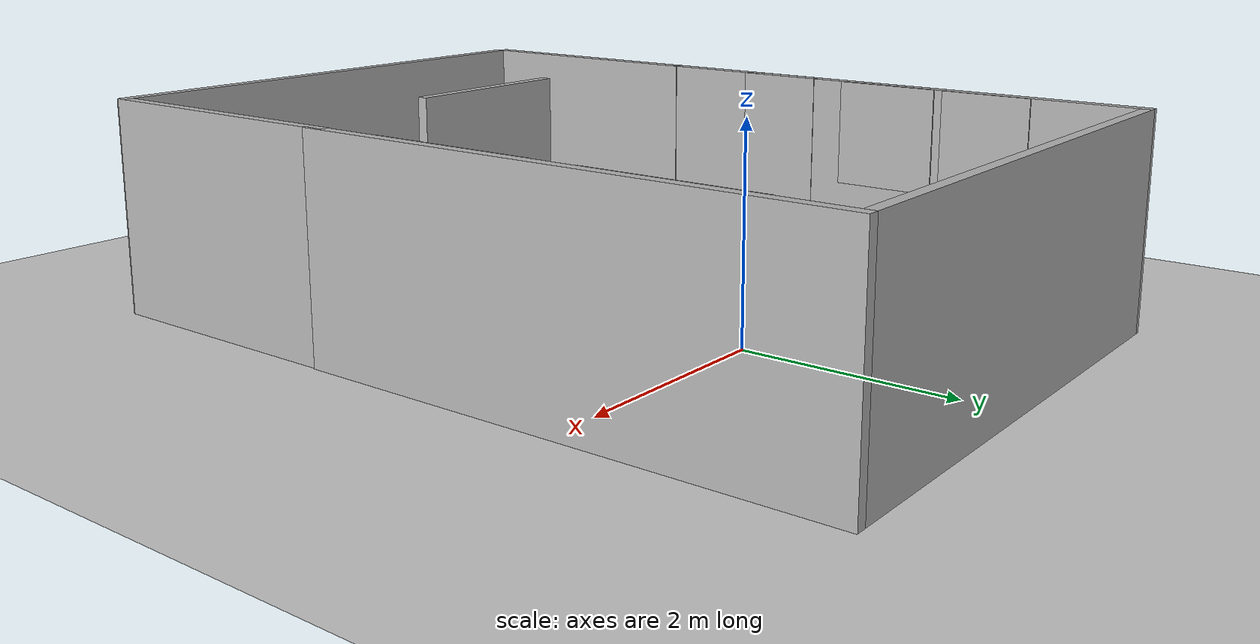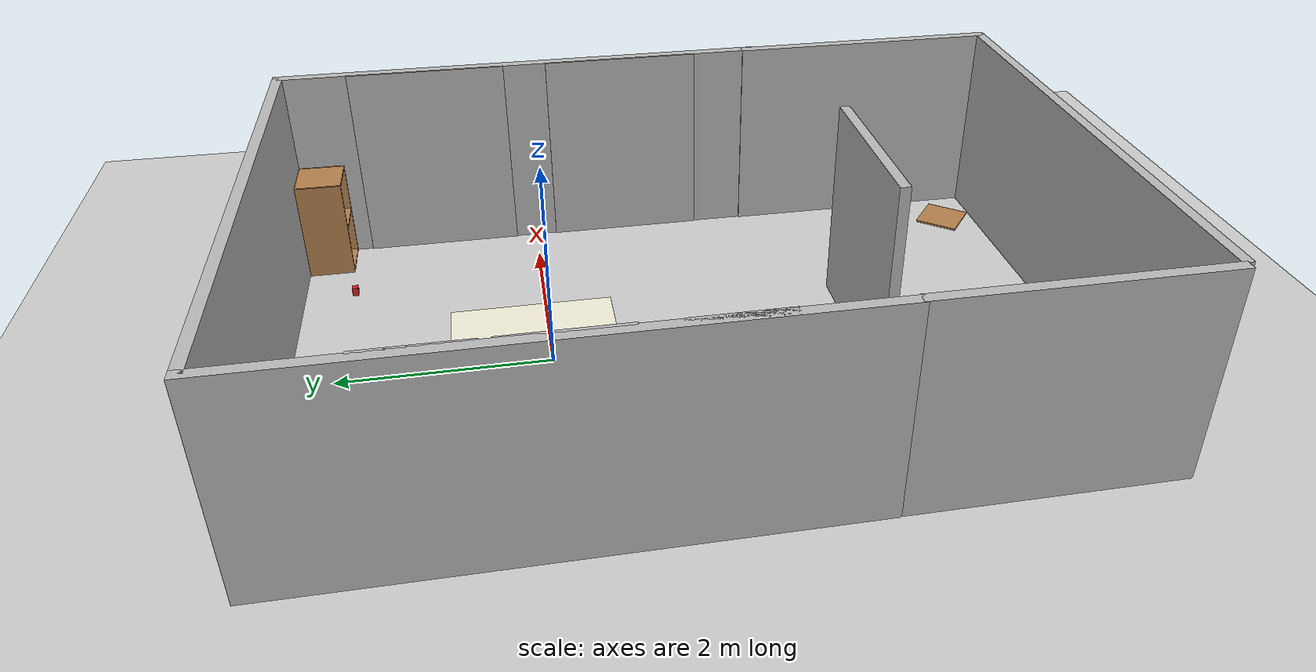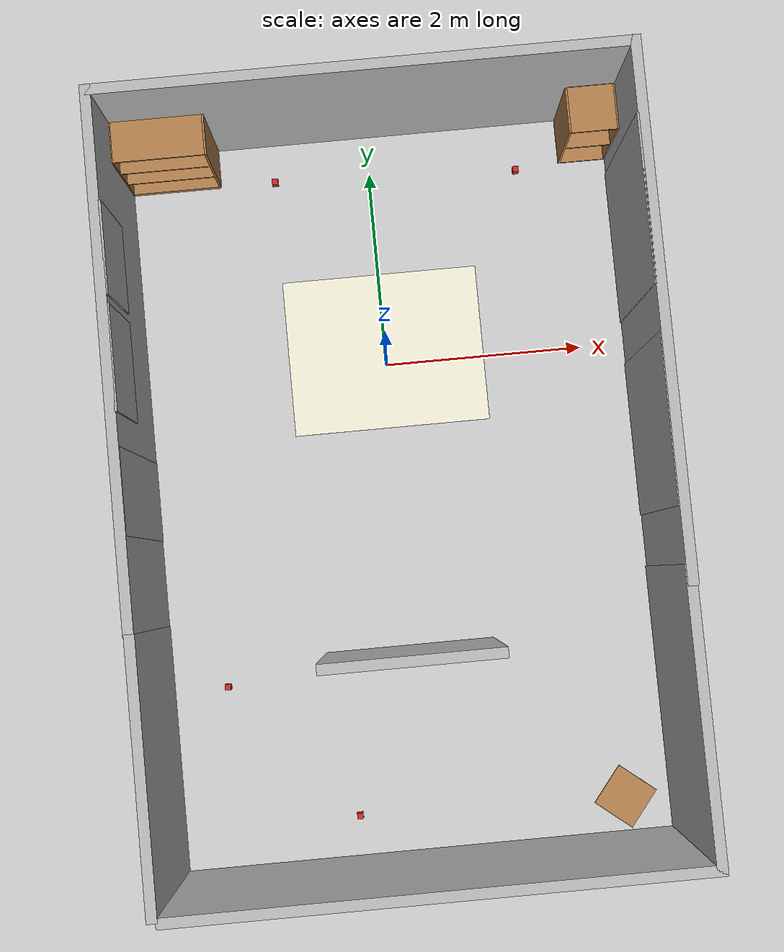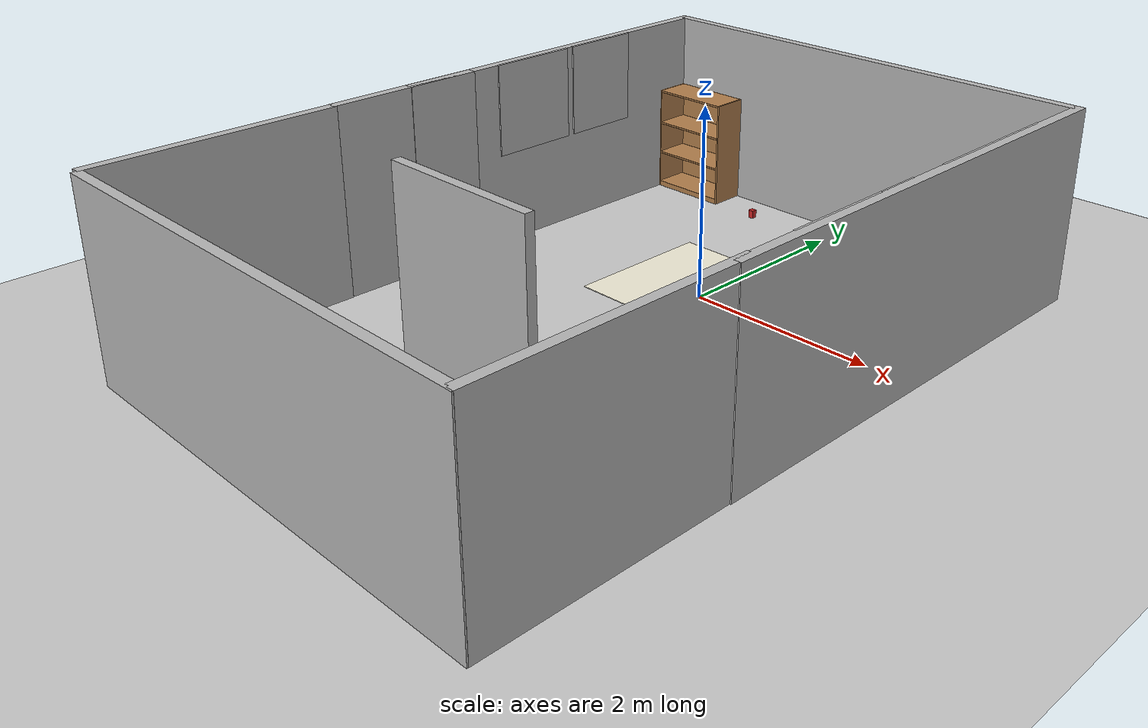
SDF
<sdf version="1.7">
 <world name="default">
  <light name="sun" type="directional">
   <pose>0 0 10 0 -0 0</pose>
   <diffuse>0.8 0.8 0.8 1</diffuse>
   <specular>0.2 0.2 0.2 1</specular>
   <attenuation>
    <range>1000</range>
    <constant>0.9</constant>
    <linear>0.01</linear>
    <quadratic>0.001</quadratic>
   </attenuation>
   <direction>-0.5 0.1 -0.9</direction>
   <spot><inner_angle>0</inner_angle><outer_angle>0</outer_angle><falloff>0</falloff></spot>
  </light>
  <model name="ground_plane">
   <static>1</static>
   <link name="link">
    <collision name="collision">
     <geometry><plane><normal>0 0 1</normal><size>100 100</size></plane></geometry>
     <surface>
      <contact><collide_bitmask>65535</collide_bitmask></contact>
      <friction><ode><mu>100</mu><mu2>50</mu2></ode></friction>
     </surface>
    </collision>
    <visual name="visual">
     <cast_shadows>0</cast_shadows>
     <geometry><plane><normal>0 0 1</normal><size>1 1</size></plane></geometry>
     <material>
      <script><uri>file://media/materials/scripts/gazebo.material</uri><name>Gazebo/Grey</name></script>
     </material>
    </visual>
   </link>
  </model>
  <gravity>0 0 -9.8</gravity>
  <magnetic_field>6e-06 2.3e-05 -4.2e-05</magnetic_field>
  <atmosphere type="adiabatic"/>
  <physics type="ode">
   <max_step_size>0.001</max_step_size>
   <real_time_factor>1</real_time_factor>
   <real_time_update_rate>1000</real_time_update_rate>
  </physics>
  <scene><ambient>0.4 0.4 0.4 1</ambient><background>0.7 0.7 0.7 1</background><shadows>1</shadows></scene>
  <audio><device>default</device></audio>
  <spherical_coordinates>
   <surface_model>EARTH_WGS84</surface_model>
   <latitude_deg>0</latitude_deg>
   <longitude_deg>0</longitude_deg>
   <elevation>0</elevation>
   <heading_deg>0</heading_deg>
  </spherical_coordinates>
  <model name="Bookshelf">
   <static>1</static>
   <link name="link">
    <inertial><mass>1</mass></inertial>
    <collision name="back">
     <pose>0 0.005 0.6 0 -0 0</pose>
     <geometry><box><size>0.9 0.01 1.2</size></box></geometry>
    </collision>
    <visual name="visual1">
     <pose>0 0.005 0.6 0 -0 0</pose>
     <geometry><box><size>0.9 0.01 1.2</size></box></geometry>
     <material>
      <diffuse>1 1 1 1</diffuse>
      <script><uri>file://media/materials/scripts/gazebo.material</uri><name>Gazebo/Wood</name></script>
      <pbr>
       <metal>
        <albedo_map>https://fuel.ignitionrobotics.org/1.0/openrobotics/models/bookshelf/3/files/bookshelf_diffuse.jpg</albedo_map>
       </metal>
      </pbr>
     </material>
    </visual>
    <collision name="left_side">
     <pose>0.45 -0.195 0.6 0 -0 0</pose>
     <geometry><box><size>0.02 0.4 1.2</size></box></geometry>
    </collision>
    <visual name="visual2">
     <pose>0.45 -0.195 0.6 0 -0 0</pose>
     <geometry><box><size>0.02 0.4 1.2</size></box></geometry>
     <material>
      <diffuse>1 1 1 1</diffuse>
      <script><uri>file://media/materials/scripts/gazebo.material</uri><name>Gazebo/Wood</name></script>
      <pbr>
       <metal>
        <albedo_map>https://fuel.ignitionrobotics.org/1.0/openrobotics/models/bookshelf/3/files/bookshelf_diffuse.jpg</albedo_map>
       </metal>
      </pbr>
     </material>
    </visual>
    <collision name="right_side">
     <pose>-0.45 -0.195 0.6 0 -0 0</pose>
     <geometry><box><size>0.02 0.4 1.2</size></box></geometry>
    </collision>
    <visual name="visual3">
     <pose>-0.45 -0.195 0.6 0 -0 0</pose>
     <geometry><box><size>0.02 0.4 1.2</size></box></geometry>
     <material>
      <diffuse>1 1 1 1</diffuse>
      <script><uri>file://media/materials/scripts/gazebo.material</uri><name>Gazebo/Wood</name></script>
      <pbr>
       <metal>
        <albedo_map>https://fuel.ignitionrobotics.org/1.0/openrobotics/models/bookshelf/3/files/bookshelf_diffuse.jpg</albedo_map>
       </metal>
      </pbr>
     </material>
    </visual>
    <collision name="bottom">
     <pose>0 -0.195 0.03 0 -0 0</pose>
     <geometry><box><size>0.88 0.4 0.06</size></box></geometry>
    </collision>
    <visual name="visual4">
     <pose>0 -0.195 0.03 0 -0 0</pose>
     <geometry><box><size>0.88 0.4 0.06</size></box></geometry>
     <material>
      <diffuse>1 1 1 1</diffuse>
      <script><uri>file://media/materials/scripts/gazebo.material</uri><name>Gazebo/Wood</name></script>
      <pbr>
       <metal>
        <albedo_map>https://fuel.ignitionrobotics.org/1.0/openrobotics/models/bookshelf/3/files/bookshelf_diffuse.jpg</albedo_map>
       </metal>
      </pbr>
     </material>
    </visual>
    <collision name="top">
     <pose>0 -0.195 1.19 0 -0 0</pose>
     <geometry><box><size>0.88 0.4 0.02</size></box></geometry>
    </collision>
    <visual name="visual5">
     <pose>0 -0.195 1.19 0 -0 0</pose>
     <geometry><box><size>0.88 0.4 0.02</size></box></geometry>
     <material>
      <diffuse>1 1 1 1</diffuse>
      <script><uri>file://media/materials/scripts/gazebo.material</uri><name>Gazebo/Wood</name></script>
      <pbr>
       <metal>
        <albedo_map>https://fuel.ignitionrobotics.org/1.0/openrobotics/models/bookshelf/3/files/bookshelf_diffuse.jpg</albedo_map>
       </metal>
      </pbr>
     </material>
    </visual>
    <collision name="low_shelf">
     <pose>0 -0.195 0.43 0 -0 0</pose>
     <geometry><box><size>0.88 0.4 0.02</size></box></geometry>
    </collision>
    <visual name="visual6">
     <pose>0 -0.195 0.43 0 -0 0</pose>
     <geometry><box><size>0.88 0.4 0.02</size></box></geometry>
     <material>
      <diffuse>1 1 1 1</diffuse>
      <script><uri>file://media/materials/scripts/gazebo.material</uri><name>Gazebo/Wood</name></script>
      <pbr>
       <metal>
        <albedo_map>https://fuel.ignitionrobotics.org/1.0/openrobotics/models/bookshelf/3/files/bookshelf_diffuse.jpg</albedo_map>
       </metal>
      </pbr>
     </material>
    </visual>
    <collision name="high_shelf">
     <pose>0 -0.195 0.8 0 -0 0</pose>
     <geometry><box><size>0.88 0.4 0.02</size></box></geometry>
    </collision>
    <visual name="visual7">
     <pose>0 -0.195 0.8 0 -0 0</pose>
     <geometry><box><size>0.88 0.4 0.02</size></box></geometry>
     <material>
      <diffuse>1 1 1 1</diffuse>
      <script><uri>file://media/materials/scripts/gazebo.material</uri><name>Gazebo/Wood</name></script>
      <pbr>
       <metal>
        <albedo_map>https://fuel.ignitionrobotics.org/1.0/openrobotics/models/bookshelf/3/files/bookshelf_diffuse.jpg</albedo_map>
       </metal>
      </pbr>
     </material>
    </visual>
   </link>
   <pose>-2 2.4 0 0 -0 0</pose>
  </model>
  <model name="cabinet">
   <static>1</static>
   <link name="cabinet_bottom_plate">
    <inertial>
     <pose>0 0 -1 0 -0 0</pose>
     <inertia><ixx>2.05</ixx><ixy>0</ixy><ixz>0</ixz><iyy>2.05</iyy><iyz>0</iyz><izz>2.05</izz></inertia>
     <mass>25</mass>
    </inertial>
    <collision name="cabinet_bottom_plate_geom">
     <pose>0 0 0.01 0 -0 0</pose>
     <geometry><box><size>0.45 0.45 0.02</size></box></geometry>
    </collision>
    <visual name="cabinet_bottom_plate_geom_visual">
     <pose>0 0 0.01 0 -0 0</pose>
     <geometry><box><size>0.45 0.45 0.02</size></box></geometry>
     <material>
      <script><uri>file://media/materials/scripts/gazebo.material</uri><name>Gazebo/Wood</name></script>
     </material>
    </visual>
    <collision name="cabinet_bottom_plate_geom_cabinet_back_plate">
     <pose>0.235 0 0.51 0 -0 0</pose>
     <geometry><box><size>0.02 0.45 1.02</size></box></geometry>
    </collision>
    <visual name="cabinet_bottom_plate_geom_cabinet_back_plate_visual">
     <pose>0.235 0 0.51 0 -0 0</pose>
     <geometry><box><size>0.02 0.45 1.02</size></box></geometry>
     <material>
      <script><uri>file://media/materials/scripts/gazebo.material</uri><name>Gazebo/Wood</name></script>
     </material>
    </visual>
    <collision name="cabinet_bottom_plate_geom_cabinet_left_plate">
     <pose>0 0.235 0.51 0 -0 0</pose>
     <geometry><box><size>0.45 0.02 1.02</size></box></geometry>
    </collision>
    <visual name="cabinet_bottom_plate_geom_cabinet_left_plate_visual">
     <pose>0 0.235 0.51 0 -0 0</pose>
     <geometry><box><size>0.45 0.02 1.02</size></box></geometry>
     <material>
      <script><uri>file://media/materials/scripts/gazebo.material</uri><name>Gazebo/Wood</name></script>
     </material>
    </visual>
    <collision name="cabinet_bottom_plate_geom_cabinet_middle_plate">
     <pose>0 0 0.51 0 -0 0</pose>
     <geometry><box><size>0.45 0.45 0.02</size></box></geometry>
    </collision>
    <visual name="cabinet_bottom_plate_geom_cabinet_middle_plate_visual">
     <pose>0 0 0.51 0 -0 0</pose>
     <geometry><box><size>0.45 0.45 0.02</size></box></geometry>
     <material>
      <script><uri>file://media/materials/scripts/gazebo.material</uri><name>Gazebo/Wood</name></script>
     </material>
    </visual>
    <collision name="cabinet_bottom_plate_geom_cabinet_right_plate">
     <pose>0 -0.235 0.51 0 -0 0</pose>
     <geometry><box><size>0.45 0.02 1.02</size></box></geometry>
    </collision>
    <visual name="cabinet_bottom_plate_geom_cabinet_right_plate_visual">
     <pose>0 -0.235 0.51 0 -0 0</pose>
     <geometry><box><size>0.45 0.02 1.02</size></box></geometry>
     <material>
      <script><uri>file://media/materials/scripts/gazebo.material</uri><name>Gazebo/Wood</name></script>
     </material>
    </visual>
    <collision name="cabinet_bottom_plate_geom_cabinet_top_plate">
     <pose>0 0 1.01 0 -0 0</pose>
     <geometry><box><size>0.45 0.45 0.02</size></box></geometry>
    </collision>
    <visual name="cabinet_bottom_plate_geom_cabinet_top_plate_visual">
     <pose>0 0 1.01 0 -0 0</pose>
     <geometry><box><size>0.45 0.45 0.02</size></box></geometry>
     <material>
      <script><uri>file://media/materials/scripts/gazebo.material</uri><name>Gazebo/Wood</name></script>
     </material>
    </visual>
   </link>
   <pose>2.21 2.17 0 0 -0 1.5707</pose>
  </model>
  <model name="makerspet_poster">
   <link name="link">
    <visual name="visual">
     <geometry><box><size>0.03 0.85714 1</size></box></geometry>
     <material>
      <script>
       <uri>https://fuel.ignitionrobotics.org/1.0/makerspet/models/makerspet_poster/1/files/material/script</uri>
       <uri>https://fuel.ignitionrobotics.org/1.0/makerspet/models/makerspet_poster/1/files/material/textures</uri>
       <name>Custom/makerspet</name>
      </script>
     </material>
    </visual>
   </link>
   <static>1</static>
   <pose>-2.45 1 1.5 0 -0 0</pose>
  </model>
  <model name="kaiaai_poster">
   <link name="link">
    <visual name="visual">
     <geometry><box><size>0.03 0.9782 1</size></box></geometry>
     <material>
      <script>
       <uri>https://fuel.ignitionrobotics.org/1.0/makerspet/models/kaiaai_poster/1/files/material/script</uri>
       <uri>https://fuel.ignitionrobotics.org/1.0/makerspet/models/kaiaai_poster/1/files/material/textures</uri>
       <name>Custom/kaiaai</name>
      </script>
     </material>
    </visual>
   </link>
   <static>1</static>
   <pose>-2.45 0 1.5 0 -0 0</pose>
  </model>
  <model name="door_08x2m_0">
   <link name="link">
    <visual name="visual">
     <geometry><box><size>0.1 0.8 2</size></box></geometry>
     <material>
      <script>
       <uri>https://fuel.ignitionrobotics.org/1.0/makerspet/models/door_08x2m/1/files/material/script</uri>
       <uri>https://fuel.ignitionrobotics.org/1.0/makerspet/models/door_08x2m/1/files/material/textures</uri>
       <name>Custom/door_08x2m</name>
      </script>
     </material>
    </visual>
   </link>
   <static>1</static>
   <pose>-2.495 -1.2 1 0 -0 0</pose>
  </model>
  <model name="room_wall_2x5">
   <link name="link">
    <visual name="visual">
     <geometry><box><size>0.1 5 2</size></box></geometry>
     <material>
      <script>
       <uri>https://fuel.ignitionrobotics.org/1.0/makerspet/models/room_wall_2x5m/1/files/material/script</uri>
       <uri>https://fuel.ignitionrobotics.org/1.0/makerspet/models/room_wall_2x5m/1/files/material/textures</uri>
       <name>Custom/room_wall_2x5</name>
      </script>
     </material>
    </visual>
    <collision name="collision"><geometry><box><size>0.1 5 2</size></box></geometry></collision>
   </link>
   <static>1</static>
   <pose>-2.5 0 1 0 -0 0</pose>
  </model>
  <model name="room_wall_2x5_0">
   <link name="link">
    <visual name="visual">
     <geometry><box><size>0.1 5 2</size></box></geometry>
     <material>
      <script>
       <uri>https://fuel.ignitionrobotics.org/1.0/makerspet/models/room_wall_2x5m/1/files/material/script</uri>
       <uri>https://fuel.ignitionrobotics.org/1.0/makerspet/models/room_wall_2x5m/1/files/material/textures</uri>
       <name>Custom/room_wall_2x5</name>
      </script>
     </material>
    </visual>
    <collision name="collision"><geometry><box><size>0.1 5 2</size></box></geometry></collision>
   </link>
   <static>1</static>
   <pose>2.5 0 1 0 -0 0</pose>
  </model>
  <model name="room_wall_2x5_1">
   <static>1</static>
   <pose>-0.03 -2.93 1 0 -0 1.5707</pose>
   <link name="link">
    <visual name="visual">
     <geometry><box><size>0.1 1.7 2</size></box></geometry>
     <material>
      <script>
       <uri>https://fuel.ignitionrobotics.org/1.0/makerspet/models/room_wall_2x5m/1/files/material/script</uri>
       <uri>https://fuel.ignitionrobotics.org/1.0/makerspet/models/room_wall_2x5m/1/files/material/textures</uri>
       <name>Custom/room_wall_2x5</name>
      </script>
     </material>
    </visual>
    <collision name="collision"><geometry><box><size>0.1 1.7 2</size></box></geometry></collision>
   </link>
  </model>
  <model name="room_wall_2x5_2">
   <link name="link">
    <visual name="visual">
     <geometry><box><size>0.1 5 2</size></box></geometry>
     <material>
      <script>
       <uri>https://fuel.ignitionrobotics.org/1.0/makerspet/models/room_wall_2x5m/1/files/material/script</uri>
       <uri>https://fuel.ignitionrobotics.org/1.0/makerspet/models/room_wall_2x5m/1/files/material/textures</uri>
       <name>Custom/room_wall_2x5</name>
      </script>
     </material>
    </visual>
    <collision name="collision"><geometry><box><size>0.1 5 2</size></box></geometry></collision>
   </link>
   <static>1</static>
   <pose>0 2.45 1 0 -0 1.5707</pose>
  </model>
  <model name="rug_ivory_2m_0">
   <link name="link">
    <visual name="visual">
     <geometry><box><size>1.6 2 0.005</size></box></geometry>
     <material>
      <script>
       <uri>https://fuel.ignitionrobotics.org/1.0/makerspet/models/rug_ivory_2m/1/files/material/script</uri>
       <uri>https://fuel.ignitionrobotics.org/1.0/makerspet/models/rug_ivory_2m/1/files/material/textures</uri>
       <name>Custom/rug_ivory_2m</name>
      </script>
     </material>
    </visual>
   </link>
   <static>1</static>
   <pose>0 0.15 0 0 -0 1.5707</pose>
  </model>
  <model name="window_curtains">
   <link name="link">
    <visual name="visual">
     <geometry><box><size>0.02 1.5676 2</size></box></geometry>
     <material>
      <script>
       <uri>https://fuel.ignitionrobotics.org/1.0/makerspet/models/window_curtains/1/files/material/script</uri>
       <uri>https://fuel.ignitionrobotics.org/1.0/makerspet/models/window_curtains/1/files/material/textures</uri>
       <name>Custom/window_curtains</name>
      </script>
      <emissive>0 1 0 1</emissive>
     </material>
    </visual>
   </link>
   <static>1</static>
   <pose>2.45 1 1 0 -0 0</pose>
  </model>
  <model name="window_curtains_0">
   <link name="link">
    <visual name="visual">
     <geometry><box><size>0.02 1.5676 2</size></box></geometry>
     <material>
      <script>
       <uri>https://fuel.ignitionrobotics.org/1.0/makerspet/models/window_curtains/1/files/material/script</uri>
       <uri>https://fuel.ignitionrobotics.org/1.0/makerspet/models/window_curtains/1/files/material/textures</uri>
       <name>Custom/window_curtains</name>
      </script>
      <emissive>0 1 0 1</emissive>
     </material>
    </visual>
   </link>
   <static>1</static>
   <pose>2.45 -1 1 0 -0 0</pose>
  </model>
  <model name="room_wall_2x5_clone">
   <static>1</static>
   <pose>-2.49402 -3.72344 1 0 -0 0</pose>
   <link name="link">
    <visual name="visual">
     <geometry><box><size>0.1 2.513 2</size></box></geometry>
     <material>
      <script>
       <uri>https://fuel.ignitionrobotics.org/1.0/makerspet/models/room_wall_2x5m/1/files/material/script</uri>
       <uri>https://fuel.ignitionrobotics.org/1.0/makerspet/models/room_wall_2x5m/1/files/material/textures</uri>
       <name>Custom/room_wall_2x5</name>
      </script>
     </material>
    </visual>
    <collision name="collision"><geometry><box><size>0.1 2.513 2</size></box></geometry></collision>
   </link>
  </model>
  <model name="room_wall_2x5_0_clone">
   <static>1</static>
   <pose>2.48841 -3.66162 1 0 -0 0</pose>
   <link name="link">
    <visual name="visual">
     <geometry><box><size>0.1 2.716 2</size></box></geometry>
     <material>
      <script>
       <uri>https://fuel.ignitionrobotics.org/1.0/makerspet/models/room_wall_2x5m/1/files/material/script</uri>
       <uri>https://fuel.ignitionrobotics.org/1.0/makerspet/models/room_wall_2x5m/1/files/material/textures</uri>
       <name>Custom/room_wall_2x5</name>
      </script>
     </material>
    </visual>
    <collision name="collision"><geometry><box><size>0.1 2.716 2</size></box></geometry></collision>
   </link>
  </model>
  <model name="room_wall_2x5_1_clone">
   <static>1</static>
   <pose>0.037335 -4.98379 1 0 -0 1.5707</pose>
   <link name="link">
    <visual name="visual">
     <geometry><box><size>0.1 5 2</size></box></geometry>
     <material>
      <script>
       <uri>https://fuel.ignitionrobotics.org/1.0/makerspet/models/room_wall_2x5m/1/files/material/script</uri>
       <uri>https://fuel.ignitionrobotics.org/1.0/makerspet/models/room_wall_2x5m/1/files/material/textures</uri>
       <name>Custom/room_wall_2x5</name>
      </script>
     </material>
    </visual>
    <collision name="collision"><geometry><box><size>0.1 5 2</size></box></geometry></collision>
   </link>
  </model>
  <model name="cabinet_clone">
   <static>1</static>
   <pose>1.99725 -4.59514 0 0 0 -0.671551</pose>
   <link name="cabinet_bottom_plate">
    <visual name="cabinet_bottom_plate_geom_visual">
     <pose>0 0 0.01 0 -0 0</pose>
     <geometry><box><size>0.45 0.45 0.02</size></box></geometry>
     <material>
      <script><uri>file://media/materials/scripts/gazebo.material</uri><name>Gazebo/Wood</name></script>
     </material>
    </visual>
    <collision name="cabinet_bottom_plate_geom">
     <pose>0 0 0.01 0 -0 0</pose>
     <geometry><box><size>0.45 0.45 0.02</size></box></geometry>
    </collision>
   </link>
  </model>
  <model name="unit_box_clone_0">
   <pose>1.51306 1.90247 0.047345 0 0 0</pose>
   <link name="link">
    <inertial>
     <mass>0.05</mass>
     <inertia><ixx>0.00001</ixx><ixy>0</ixy><ixz>0</ixz><iyy>0.00001</iyy><iyz>0</iyz><izz>0.00001</izz></inertia>
    </inertial>
    <visual name="visual">
     <geometry><box><size>0.06 0.06 0.09</size></box></geometry>
     <material>
      <script><name>Gazebo/Red</name><uri>file://media/materials/scripts/gazebo.material</uri></script>
      <shader type="pixel"><normal_map>__default__</normal_map></shader>
      <ambient>1 0.3 0.3 1</ambient>
      <diffuse>1 0.7 0.7 1</diffuse>
      <specular>1 0.01 0.01 1</specular>
      <emissive>0.9 0 0 1</emissive>
     </material>
    </visual>
    <collision name="collision">
     <geometry><box><size>0.06 0.06 0.09</size></box></geometry>
     <surface>
      <friction><ode><mu>0.1</mu><mu2>0.1</mu2></ode></friction>
      <contact><ode><kp>1000000.0</kp><kd>1.0</kd><min_depth>0.001</min_depth></ode></contact>
     </surface>
    </collision>
   </link>
  </model>
  <model name="unit_box_clone_0_clone">
   <pose>-1.90 -3.13 0.047355 0 0 0</pose>
   <link name="link">
    <inertial>
     <mass>0.05</mass>
     <inertia><ixx>0.00001</ixx><ixy>0</ixy><ixz>0</ixz><iyy>0.00001</iyy><iyz>0</iyz><izz>0.00001</izz></inertia>
    </inertial>
    <visual name="visual">
     <geometry><box><size>0.06 0.06 0.09</size></box></geometry>
     <material>
      <script><name>Gazebo/Red</name><uri>file://media/materials/scripts/gazebo.material</uri></script>
      <shader type="pixel"><normal_map>__default__</normal_map></shader>
      <ambient>1 0.3 0.3 1</ambient>
      <diffuse>1 0.7 0.7 1</diffuse>
      <specular>1 0.01 0.01 1</specular>
      <emissive>0.9 0 0 1</emissive>
     </material>
    </visual>
    <collision name="collision">
     <geometry><box><size>0.06 0.06 0.09</size></box></geometry>
     <surface>
      <friction><ode><mu>0.1</mu><mu2>0.1</mu2></ode></friction>
      <contact><ode><kp>1000000.0</kp><kd>1.0</kd><min_depth>0.001</min_depth></ode></contact>
     </surface>
    </collision>
   </link>
  </model>
  <model name="unit_box_clone_0_clone_clone">
   <pose>-0.977703 1.99787 0.047354 0 0 0</pose>
   <link name="link">
    <inertial>
     <mass>0.05</mass>
     <inertia><ixx>0.00001</ixx><ixy>0</ixy><ixz>0</ixz><iyy>0.00001</iyy><iyz>0</iyz><izz>0.00001</izz></inertia>
    </inertial>
    <visual name="visual">
     <geometry><box><size>0.06 0.06 0.09</size></box></geometry>
     <material>
      <script><name>Gazebo/Red</name><uri>file://media/materials/scripts/gazebo.material</uri></script>
      <shader type="pixel"><normal_map>__default__</normal_map></shader>
      <ambient>1 0.3 0.3 1</ambient>
      <diffuse>1 0.7 0.7 1</diffuse>
      <specular>1 0.01 0.01 1</specular>
      <emissive>0.9 0 0 1</emissive>
     </material>
    </visual>
    <collision name="collision">
     <geometry><box><size>0.06 0.06 0.09</size></box></geometry>
     <surface>
      <friction><ode><mu>0.1</mu><mu2>0.1</mu2></ode></friction>
      <contact><ode><kp>1000000.0</kp><kd>1.0</kd><min_depth>0.001</min_depth></ode></contact>
     </surface>
    </collision>
   </link>
  </model>
  <model name="unit_box_clone_0_clone_clone_clone">
   <pose>-0.685502 -4.533669 0.044490 0 0 0</pose>
   <link name="link">
    <inertial>
     <mass>0.05</mass>
     <inertia><ixx>0.00001</ixx><ixy>0</ixy><ixz>0</ixz><iyy>0.00001</iyy><iyz>0</iyz><izz>0.00001</izz></inertia>
    </inertial>
    <visual name="visual">
     <geometry><box><size>0.06 0.06 0.09</size></box></geometry>
     <material>
      <script><name>Gazebo/Red</name><uri>file://media/materials/scripts/gazebo.material</uri></script>
      <shader type="pixel"><normal_map>__default__</normal_map></shader>
      <ambient>1 0.3 0.3 1</ambient>
      <diffuse>1 0.7 0.7 1</diffuse>
      <specular>1 0.01 0.01 1</specular>
      <emissive>0.9 0 0 1</emissive>
     </material>
    </visual>
    <collision name="collision">
     <geometry><box><size>0.06 0.06 0.09</size></box></geometry>
     <surface>
      <friction><ode><mu>0.1</mu><mu2>0.1</mu2></ode></friction>
      <contact><ode><kp>1000000.0</kp><kd>1.0</kd><min_depth>0.001</min_depth></ode></contact>
     </surface>
    </collision>
   </link>
  </model>
 </world>
</sdf>
